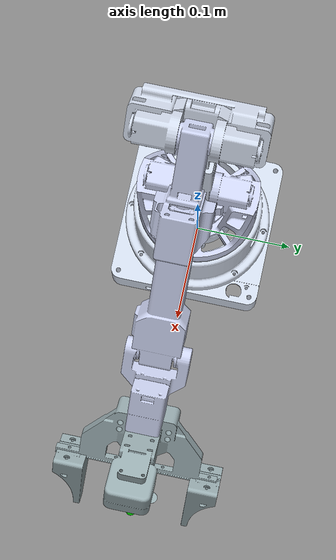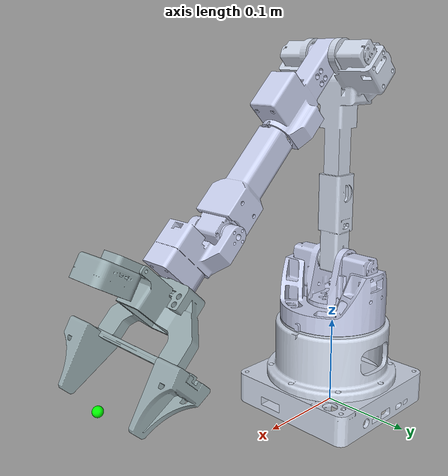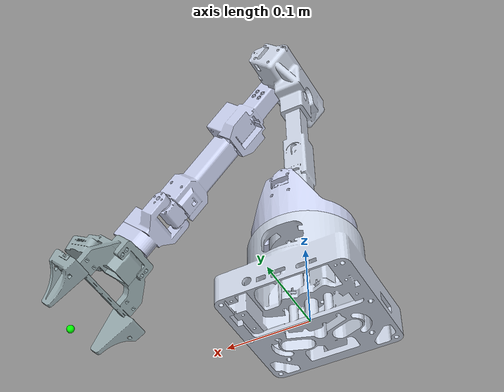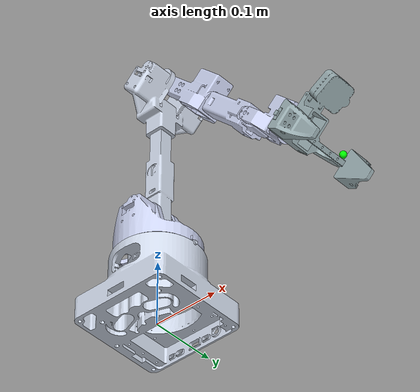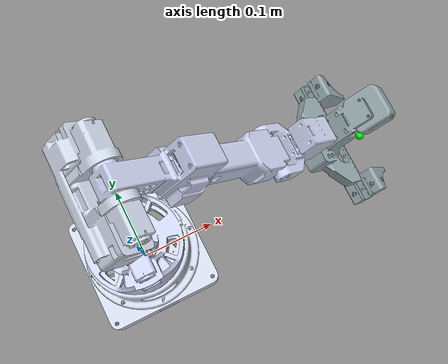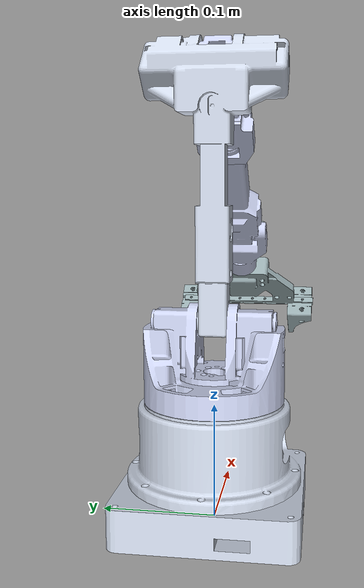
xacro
<?xml version="1.0"?>
<robot xmlns:xacro="http://www.ros.org/wiki/xacro" name="Alicia_D_v5_6_gripper_100mm">
    <xacro:arg name="initial_positions_file" default="initial_positions.yaml" />
    <xacro:arg name="hw_port" default="" />
    <xacro:arg name="hw_debug_mode" default="false" />
    <xacro:arg name="hw_use_open_loop_state" default="false" />
    <xacro:arg name="hw_gripper_type" default="100mm" />
    <xacro:arg name="hw_default_speed_deg_s" default="20.0" />
    <xacro:arg name="hw_feedback_timeout_s" default="0.5" />

    <!-- Import alicia_d_descriptions urdf file for v5_6 100mm -->
    <xacro:include filename="$(find alicia_d_descriptions)/urdf/Alicia_D_v5_6/Alicia_D_v5_6_gripper_100mm.urdf" />

    <!-- Import control_xacro -->
    <xacro:include filename="alicia_d_descriptions.ros2_control.xacro" />

    <!-- Use ros2_control with configurable hardware interface -->
    <xacro:alicia_d_descriptions_ros2_control
        name="AliciaDHardware"
        initial_positions_file="$(arg initial_positions_file)"
        hw_port="$(arg hw_port)"
        hw_debug_mode="$(arg hw_debug_mode)"
        hw_use_open_loop_state="$(arg hw_use_open_loop_state)"
        hw_gripper_type="$(arg hw_gripper_type)"
        hw_default_speed_deg_s="$(arg hw_default_speed_deg_s)"
        hw_feedback_timeout_s="$(arg hw_feedback_timeout_s)"/>

</robot>

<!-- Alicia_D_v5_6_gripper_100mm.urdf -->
<robot
  name="Alicia_D_v5_6_gripper_100mm">
 <mujoco>
    <compiler meshdir="package://alicia_d_descriptions/meshes/Alicia_D_v5_6/gripper_100mm" discardvisual="false" />
    <contact>
      <exclude body1="base_link" body2="Link1"/>
      <exclude body1="Link1" body2="Link2"/>
      <exclude body1="Link2" body2="Link3"/>
      <exclude body1="Link3" body2="Link4"/>
      <exclude body1="Link4" body2="Link5"/>
      <exclude body1="Link5" body2="Link6"/>
      <exclude body1="Link6" body2="left_gripper"/>
      <exclude body1="left_gripper" body2="right_gripper"/>
    </contact>
  </mujoco>

  <link
    name="base_link">
    <inertial>
      <origin
        xyz="-0.000826234810794059 -0.00797844272739653 0.0457675129552246"
        rpy="0 0 0" />
      <mass
        value="0.733961424954529" />
      <inertia
        ixx="0.00138410344771801"
        ixy="5.67201110348386E-05"
        ixz="-5.14360166026408E-07"
        iyy="0.00173617223702126"
        iyz="1.48652204582846E-05"
        izz="0.00274667683204281" />
    </inertial>
    <visual>
      <origin
        xyz="0 0 0"
        rpy="0 0 0" />
      <geometry>
        <mesh
          filename="package://alicia_d_descriptions/meshes/Alicia_D_v5_6/gripper_100mm/base_link.STL" />
      </geometry>
      <material
        name="">
        <color
          rgba="0.807843137254902 0.843137254901961 0.905882352941176 1" />
      </material>
    </visual>
    <collision>
      <origin
        xyz="0 0 0"
        rpy="0 0 0" />
      <geometry>
        <mesh
          filename="package://alicia_d_descriptions/meshes/Alicia_D_v5_6/gripper_100mm/base_link.STL" />
      </geometry>
    </collision>
  </link>
  <link
    name="Link1">
    <inertial>
      <origin
        xyz="0.000230589777408925 1.29106264207593E-05 0.00303135439825203"
        rpy="0 0 0" />
      <mass
        value="0.195233495556057" />
      <inertia
        ixx="0.000258351163283404"
        ixy="8.79399970494642E-07"
        ixz="6.87503893065992E-07"
        iyy="0.000149307749091489"
        iyz="1.07703883392669E-06"
        izz="0.000339791347248474" />
    </inertial>
    <visual>
      <origin
        xyz="0 0 0"
        rpy="0 0 0" />
      <geometry>
        <mesh
          filename="package://alicia_d_descriptions/meshes/Alicia_D_v5_6/gripper_100mm/Link1.STL" />
      </geometry>
      <material
        name="">
        <color
          rgba="0.796078431372549 0.823529411764706 0.937254901960784 1" />
      </material>
    </visual>
    <collision>
      <origin
        xyz="0 0 0"
        rpy="0 0 0" />
      <geometry>
        <mesh
          filename="package://alicia_d_descriptions/meshes/Alicia_D_v5_6/gripper_100mm/Link1.STL" />
      </geometry>
    </collision>
  </link>
  <joint
    name="Joint1"
    type="revolute">
    <origin
      xyz="0 0 0.1295"
      rpy="0 0 0" />
    <parent
      link="base_link" />
    <child
      link="Link1" />
    <axis
      xyz="0 0 1" />
    <limit
      lower="-2.749"
      upper="2.749"
      effort="5"
      velocity="12" />
  </joint>
  <link
    name="Link2">
    <inertial>
      <origin
        xyz="-0.1505886956238 0.000866069014068702 -0.000650950596117093"
        rpy="0 0 0" />
      <mass
        value="0.207033693066089" />
      <inertia
        ixx="0.000128135500182744"
        ixy="-1.38510377197406E-07"
        ixz="-4.91817924862077E-06"
        iyy="0.000205708390606615"
        iyz="3.50025102961721E-07"
        izz="0.000122721347334006" />
    </inertial>
    <visual>
      <origin
        xyz="0 0 0"
        rpy="0 0 0" />
      <geometry>
        <mesh
          filename="package://alicia_d_descriptions/meshes/Alicia_D_v5_6/gripper_100mm/Link2.STL" />
      </geometry>
      <material
        name="">
        <color
          rgba="0.807843137254902 0.843137254901961 0.905882352941176 1" />
      </material>
    </visual>
    <collision>
      <origin
        xyz="0 0 0"
        rpy="0 0 0" />
      <geometry>
        <mesh
          filename="package://alicia_d_descriptions/meshes/Alicia_D_v5_6/gripper_100mm/Link2.STL" />
      </geometry>
    </collision>
  </link>
  <joint
    name="Joint2"
    type="revolute">
    <origin
      xyz="0 0 0.04287"
      rpy="1.5708 1.5708 0" />
    <parent
      link="Link1" />
    <child
      link="Link2" />
    <axis
      xyz="0 0 1" />
    <limit
      lower="-2"
      upper="2"
      effort="5"
      velocity="12" />
  </joint>
  <link
    name="Link3">
    <inertial>
      <origin
        xyz="0.00248143780493948 -0.055786318961577 0.000269721187496484"
        rpy="0 0 0" />
      <mass
        value="0.0845575651613574" />
      <inertia
        ixx="7.61918348100336E-05"
        ixy="2.26498126057066E-06"
        ixz="-3.82299410321316E-07"
        iyy="2.87941469642104E-05"
        iyz="5.38445498652279E-06"
        izz="8.04370650316099E-05" />
    </inertial>
    <visual>
      <origin
        xyz="0 0 0"
        rpy="0 0 0" />
      <geometry>
        <mesh
          filename="package://alicia_d_descriptions/meshes/Alicia_D_v5_6/gripper_100mm/Link3.STL" />
      </geometry>
      <material
        name="">
        <color
          rgba="0.792156862745098 0.819607843137255 0.933333333333333 1" />
      </material>
    </visual>
    <collision>
      <origin
        xyz="0 0 0"
        rpy="0 0 0" />
      <geometry>
        <mesh
          filename="package://alicia_d_descriptions/meshes/Alicia_D_v5_6/gripper_100mm/Link3.STL" />
      </geometry>
    </collision>
  </link>
  <joint
    name="Joint3"
    type="revolute">
    <origin
      xyz="-0.22367 0.022492 -5E-05"
      rpy="0 0 2.3562" />
    <parent
      link="Link2" />
    <child
      link="Link3" />
    <axis
      xyz="0 0 1" />
    <limit
      lower="-0.5"
      upper="3.14159"
      effort="5"
      velocity="12" />
  </joint>
  <link
    name="Link4">
    <inertial>
      <origin
        xyz="-0.000298365512111376 -0.000601368976746215 -0.0659740390150152"
        rpy="0 0 0" />
      <mass
        value="0.0653695951425785" />
      <inertia
        ixx="7.03004188045042E-05"
        ixy="9.68417873789794E-09"
        ixz="-7.50131710418784E-07"
        iyy="6.87470297837511E-05"
        iyz="-4.45271910827907E-08"
        izz="1.68226189340094E-05" />
    </inertial>
    <visual>
      <origin
        xyz="0 0 0"
        rpy="0 0 0" />
      <geometry>
        <mesh
          filename="package://alicia_d_descriptions/meshes/Alicia_D_v5_6/gripper_100mm/Link4.STL" />
      </geometry>
      <material
        name="">
        <color
          rgba="0.792156862745098 0.819607843137255 0.933333333333333 1" />
      </material>
    </visual>
    <collision>
      <origin
        xyz="0 0 0"
        rpy="0 0 0" />
      <geometry>
        <mesh
          filename="package://alicia_d_descriptions/meshes/Alicia_D_v5_6/gripper_100mm/Link4.STL" />
      </geometry>
    </collision>
  </link>
  <joint
    name="Joint4"
    type="revolute">
    <origin
      xyz="-0.00211 -0.099 0.0002"
      rpy="-1.5708 0 0" />
    <parent
      link="Link3" />
    <child
      link="Link4" />
    <axis
      xyz="0 0 1" />
    <limit
      lower="-2.79"
      upper="2.79"
      effort="5"
      velocity="12" />
  </joint>
  <link
    name="Link5">
    <inertial>
      <origin
        xyz="-0.0113684232423691 -0.0308687473010146 0.000870449928863028"
        rpy="0 0 0" />
      <mass
        value="0.050763902309721" />
      <inertia
        ixx="1.87701017069596E-05"
        ixy="-2.01098609554627E-06"
        ixz="5.15226540328947E-08"
        iyy="2.51021034553581E-05"
        iyz="-4.22412453521615E-08"
        izz="1.7257171014064E-05" />
    </inertial>
    <visual>
      <origin
        xyz="0 0 0"
        rpy="0 0 0" />
      <geometry>
        <mesh
          filename="package://alicia_d_descriptions/meshes/Alicia_D_v5_6/gripper_100mm/Link5.STL" />
      </geometry>
      <material
        name="">
        <color
          rgba="0.792156862745098 0.819607843137255 0.933333333333333 1" />
      </material>
    </visual>
    <collision>
      <origin
        xyz="0 0 0"
        rpy="0 0 0" />
      <geometry>
        <mesh
          filename="package://alicia_d_descriptions/meshes/Alicia_D_v5_6/gripper_100mm/Link5.STL" />
      </geometry>
    </collision>
  </link>
  <joint
    name="Joint5"
    type="revolute">
    <origin
      xyz="0 -0.0005 -0.12235"
      rpy="1.5708 0 -3.1416" />
    <parent
      link="Link4" />
    <child
      link="Link5" />
    <axis
      xyz="0 0 -1" />
    <limit
      lower="-1.57"
      upper="1.57"
      effort="5"
      velocity="12" />
  </joint>
  <link
    name="Link6">
    <inertial>
      <origin
        xyz="-0.029248098562467 -0.00016882200980945 0.0345028311825817"
        rpy="0 0 0" />
      <mass
        value="0.119820573151617" />
      <inertia
        ixx="8.13589561206242E-05"
        ixy="1.00502626880445E-08"
        ixz="-3.58286144151259E-06"
        iyy="3.33372461494345E-05"
        iyz="2.08982135984784E-08"
        izz="8.69091055900091E-05" />
    </inertial>
    <visual>
      <origin
        xyz="0 0 0"
        rpy="0 0 0" />
      <geometry>
        <mesh
          filename="package://alicia_d_descriptions/meshes/Alicia_D_v5_6/gripper_100mm/Link6.STL" />
      </geometry>
      <material
        name="">
        <color
          rgba="0.592156862745098 0.666666666666667 0.682352941176471 1" />
      </material>
    </visual>
    <collision>
      <origin
        xyz="0 0 0"
        rpy="0 0 0" />
      <geometry>
        <mesh
          filename="package://alicia_d_descriptions/meshes/Alicia_D_v5_6/gripper_100mm/Link6.STL" />
      </geometry>
    </collision>
  </link>
  <joint
    name="Joint6"
    type="revolute">
    <origin
      xyz="-0.00385 -0.0575 0.001"
      rpy="1.5708 0 0" />
    <parent
      link="Link5" />
    <child
      link="Link6" />
    <axis
      xyz="0 0 -1" />
    <limit
      lower="-3.14159"
      upper="3.14159"
      effort="5"
      velocity="12" />
  </joint>
  <link
    name="left_gripper">
    <inertial>
      <origin
        xyz="2.97087515699346E-08 -0.0434087591943531 -0.0106596716155943"
        rpy="0 0 0" />
      <mass
        value="0.0256461121677845" />
      <inertia
        ixx="6.46830326573706E-06"
        ixy="-2.39543801082248E-11"
        ixz="4.63721305647814E-12"
        iyy="5.13428741941763E-06"
        iyz="-1.26432048814164E-06"
        izz="8.03606347912521E-06" />
    </inertial>
    <visual>
      <origin
        xyz="0 0 0"
        rpy="0 0 0" />
      <geometry>
        <mesh
          filename="package://alicia_d_descriptions/meshes/Alicia_D_v5_6/gripper_100mm/left_gripper.STL" />
      </geometry>
      <material
        name="">
        <color
          rgba="0.592156862745098 0.666666666666667 0.682352941176471 1" />
      </material>
    </visual>
    <collision>
      <origin
        xyz="0 0 0"
        rpy="0 0 0" />
      <geometry>
        <mesh
          filename="package://alicia_d_descriptions/meshes/Alicia_D_v5_6/gripper_100mm/left_gripper.STL" />
      </geometry>
    </collision>
  </link>
  <joint
    name="Gripper"
    type="prismatic">
    <origin
      xyz="-0.000200000000001088 -0.050497849845622 0.130979659620446"
      rpy="1.5707963267949 0 3.14159265358979" />
    <parent
      link="Link6" />
    <child
      link="left_gripper" />
    <axis
      xyz="0 0 1" />
    <limit
      lower="0"
      upper="0.05"
      effort="5"
      velocity="12" />
  </joint>
  <link
    name="right_gripper">
    <inertial>
      <origin
        xyz="-2.97087526801576E-08 0.0434087591943507 -0.0106596716155944"
        rpy="0 0 0" />
      <mass
        value="0.0256461121677874" />
      <inertia
        ixx="6.46830326573819E-06"
        ixy="-2.39543798316685E-11"
        ixz="-4.6372128498014E-12"
        iyy="5.13428741941821E-06"
        iyz="1.26432048814209E-06"
        izz="8.036063479126E-06" />
    </inertial>
    <visual>
      <origin
        xyz="0 0 0"
        rpy="0 0 0" />
      <geometry>
        <mesh
          filename="package://alicia_d_descriptions/meshes/Alicia_D_v5_6/gripper_100mm/right_gripper.STL" />
      </geometry>
      <material
        name="">
        <color
          rgba="0.592156862745098 0.666666666666667 0.682352941176471 1" />
      </material>
    </visual>
    <collision>
      <origin
        xyz="0 0 0"
        rpy="0 0 0" />
      <geometry>
        <mesh
          filename="package://alicia_d_descriptions/meshes/Alicia_D_v5_6/gripper_100mm/right_gripper.STL" />
      </geometry>
    </collision>
  </link>
  <joint
    name="right_finger"
    type="prismatic">
    <origin
      xyz="-0.000199999999998035 0.050502150154378 0.130979659620446"
      rpy="-1.5707963267949 0 3.14159265358978" />
    <parent
      link="Link6" />
    <child
      link="right_gripper" />
    <axis
      xyz="0 0 -1" />
    <limit
      lower="-0.05"
      upper="0"
      effort="5"
      velocity="12" />
    <mimic joint="Gripper" multiplier="-1" offset="0"/>

  </joint>
   <link
    name="tool0">
    <visual>
      <origin
        xyz="0 0 0"
        rpy="0 0 0" />
      <geometry>
        <sphere radius="0.005" />
      </geometry>
      <material
        name="green_virtual_sphere_material">
        <color
          rgba="0 1 0 1" />
      </material>
    </visual>
  </link>

  <joint
    name="finger"
    type="fixed">
    <origin
      xyz="-0.0002 0 0.13098"
      rpy="0 0 0" />
    <parent
      link="Link6" />
    <child
      link="tool0" />
    <axis
      xyz="0 0 0" />
  </joint>
</robot>
